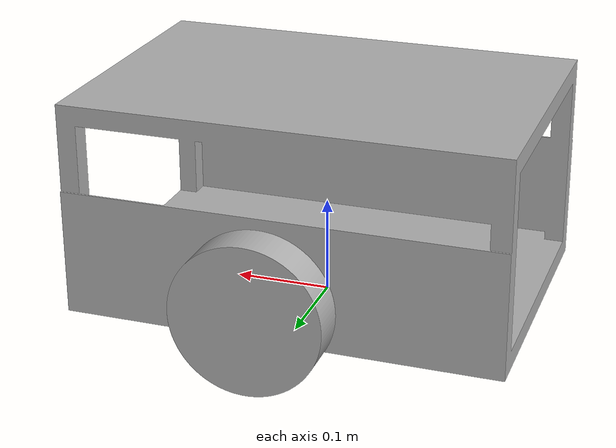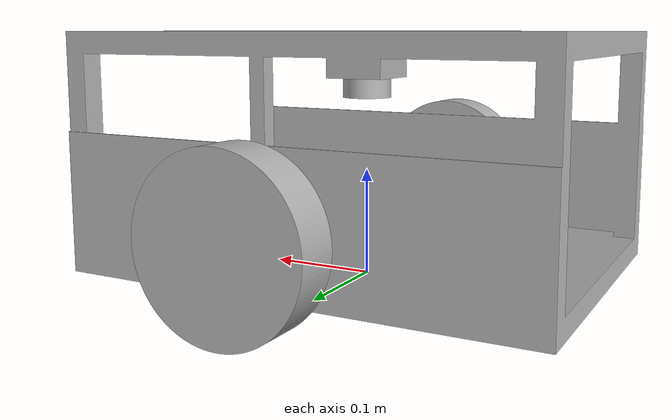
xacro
<?xml version="1.0" ?>
<robot name="urdf_description_oct" xmlns:xacro="http://www.ros.org/wiki/xacro">

<xacro:include filename="$(find urdf_description_oct)/urdf/materials.xacro" />
<xacro:include filename="$(find urdf_description_oct)/urdf/October_2026_URDF.ros2control" />
<xacro:include filename="$(find urdf_description_oct)/urdf/October_2026_URDF.gazebo" />

<link name="base_footprint"/>

<joint name="base_footprint_to_base_link" type="fixed">
  <parent link="base_footprint"/>
  <child link="base_link"/>
  <origin xyz="0 0 0.01" rpy="0 0 0"/>
</joint>
<link name="base_link">
  <inertial>
    <origin xyz="-5.850702875117087e-15 4.8352916323281706e-17 0.10886175850714139" rpy="0 0 0"/>
    <mass value="47.24949112849159"/>
    <inertia ixx="0.85156" iyy="1.296902" izz="1.26345" ixy="-0.0" iyz="0.0" ixz="-0.0"/>
  </inertial>
  <visual>
    <origin xyz="0 0 0" rpy="0 0 0"/>
    <geometry>
      <mesh filename="file://$(find urdf_description_oct)/meshes/base_link.stl" scale="0.001 0.001 0.001"/>
    </geometry>
    <material name="silver"/>
  </visual>
  <collision>
    <origin xyz="0 0 0" rpy="0 0 0"/>
    <geometry>
      <mesh filename="file://$(find urdf_description_oct)/meshes/base_link.stl" scale="0.001 0.001 0.001"/>
    </geometry>
  </collision>
</link>

<link name="left_wheel_1">
  <inertial>
    <origin xyz="-7.105427357601002e-17 0.01999999999999999 1.3877787807814457e-17" rpy="0 0 0"/>
    <mass value="5.54883802440297"/>
    <inertia ixx="0.008543" iyy="0.015606" izz="0.008543" ixy="-0.0" iyz="0.0" ixz="0.0"/>
  </inertial>
  <visual>
    <origin xyz="-0.0 -0.198 -0.065658" rpy="0 0 0"/>
    <geometry>
      <mesh filename="file://$(find urdf_description_oct)/meshes/left_wheel_1.stl" scale="0.001 0.001 0.001"/>
    </geometry>
    <material name="silver"/>
  </visual>
  <collision>
    <origin xyz="-0.0 -0.198 -0.065658" rpy="0 0 0"/>
    <geometry>
      <mesh filename="file://$(find urdf_description_oct)/meshes/left_wheel_1.stl" scale="0.001 0.001 0.001"/>
    </geometry>
  </collision>
</link>

<link name="right_wheel_1">
  <inertial>
    <origin xyz="0.0 -0.01999999999999999 0.0" rpy="0 0 0"/>
    <mass value="5.54883802440297"/>
    <inertia ixx="0.008543" iyy="0.015606" izz="0.008543" ixy="0.0" iyz="-0.0" ixz="-0.0"/>
  </inertial>
  <visual>
    <origin xyz="-0.0 0.198 -0.065658" rpy="0 0 0"/>
    <geometry>
      <mesh filename="file://$(find urdf_description_oct)/meshes/right_wheel_1.stl" scale="0.001 0.001 0.001"/>
    </geometry>
    <material name="silver"/>
  </visual>
  <collision>
    <origin xyz="-0.0 0.198 -0.065658" rpy="0 0 0"/>
    <geometry>
      <mesh filename="file://$(find urdf_description_oct)/meshes/right_wheel_1.stl" scale="0.001 0.001 0.001"/>
    </geometry>
  </collision>
</link>

<link name="lidar_1">
  <inertial>
    <origin xyz="0.0 -4.909461996440466e-18 -0.009099999999999997" rpy="0 0 0"/>
    <mass value="0.22722491709930173"/>
    <inertia ixx="3.5e-05" iyy="3.5e-05" izz="5.8e-05" ixy="-0.0" iyz="0.0" ixz="0.0"/>
  </inertial>
  <visual>
    <origin xyz="0.0 -0.0 -0.1769" rpy="0 0 0"/>
    <geometry>
      <mesh filename="file://$(find urdf_description_oct)/meshes/lidar_1.stl" scale="0.001 0.001 0.001"/>
    </geometry>
    <material name="silver"/>
  </visual>
  <collision>
    <origin xyz="0.0 -0.0 -0.1769" rpy="0 0 0"/>
    <geometry>
      <mesh filename="file://$(find urdf_description_oct)/meshes/lidar_1.stl" scale="0.001 0.001 0.001"/>
    </geometry>
  </collision>
</link>

<joint name="Revolute 1" type="continuous">
  <origin xyz="0.0 0.198 0.065658" rpy="0 0 0"/>
  <parent link="base_link"/>
  <child link="left_wheel_1"/>
  <axis xyz="0.0 1.0 0.0"/>
</joint>

<joint name="Revolute 2" type="continuous">
  <origin xyz="0.0 -0.198 0.065658" rpy="0 0 0"/>
  <parent link="base_link"/>
  <child link="right_wheel_1"/>
  <axis xyz="0.0 1.0 0.0"/>
</joint>

<joint name="Rigid 3" type="fixed">
  <origin xyz="0.0 0.0 0.1769" rpy="0 0 0"/>
  <parent link="base_link"/>
  <child link="lidar_1"/>
</joint>

</robot>

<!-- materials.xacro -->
<robot name="October_2026_URDF" xmlns:xacro="http://www.ros.org/wiki/xacro" >

<material name="silver">
  <color rgba="0.700 0.700 0.700 1.000"/>
</material>

</robot>

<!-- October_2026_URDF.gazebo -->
<robot name="October_2026_URDF" xmlns:xacro="http://www.ros.org/wiki/xacro" >

<xacro:property name="body_color" value="Gazebo/Silver" />

<!-- Base link friction properties (low friction for contact points to slide like casters) -->
<gazebo reference="base_link">
  <material>${body_color}</material>
  <mu1>0.01</mu1>
  <mu2>0.01</mu2>
  <self_collide>true</self_collide>
  <gravity>true</gravity>
</gazebo>

<!-- Wheel traction friction properties -->
<gazebo reference="left_wheel_1">
  <material>${body_color}</material>
  <mu1>1.0</mu1>
  <mu2>1.0</mu2>
  <self_collide>true</self_collide>
</gazebo>

<gazebo reference="right_wheel_1">
  <material>${body_color}</material>
  <mu1>1.0</mu1>
  <mu2>1.0</mu2>
  <self_collide>true</self_collide>
</gazebo>

<!-- Lidar sensor definition -->
<gazebo reference="lidar_1">
  <material>${body_color}</material>
  <mu1>0.2</mu1>
  <mu2>0.2</mu2>
  <self_collide>true</self_collide>
  <sensor name="lidar" type="gpu_lidar">
    <pose>0 0 0 0 0 0</pose>
    <always_on>true</always_on>
    <visualize>true</visualize>
    <update_rate>10</update_rate>
    <topic>/scan</topic>
    <gz_frame_id>lidar_1</gz_frame_id>
    <ray>
      <scan>
        <horizontal>
          <samples>360</samples>
          <resolution>1</resolution>
          <min_angle>-3.14159265</min_angle>
          <max_angle>3.14159265</max_angle>
        </horizontal>
        <vertical>
          <samples>1</samples>
          <resolution>1</resolution>
          <min_angle>0</min_angle>
          <max_angle>0</max_angle>
        </vertical>
      </scan>
      <range>
        <min>0.12</min>
        <max>12.0</max>
        <resolution>0.01</resolution>
      </range>
      <noise>
        <type>gaussian</type>
        <mean>0.0</mean>
        <stddev>0.01</stddev>
      </noise>
    </ray>
  </sensor>
</gazebo>

<!-- Gazebo Sim Plugins -->
<gazebo>
  <!-- Differential Drive System for teleoperation -->
  <plugin filename="gz-sim-diff-drive-system" name="gz::sim::systems::DiffDrive">
    <left_joint>Revolute 1</left_joint>
    <right_joint>Revolute 2</right_joint>
    <wheel_separation>0.436</wheel_separation>
    <wheel_radius>0.075</wheel_radius>

    <!-- Velocity and Acceleration Limits -->
    <max_linear_acceleration>1.0</max_linear_acceleration>
    <max_angular_acceleration>2.0</max_angular_acceleration>
    <min_linear_acceleration>-1.0</min_linear_acceleration>
    <min_angular_acceleration>-2.0</min_angular_acceleration>

    <!-- Topics and TF frames -->
    <topic>/cmd_vel</topic>
    <odom_topic>/odom</odom_topic>
    <tf_topic>/tf</tf_topic>
    <frame_id>odom</frame_id>
    <child_frame_id>base_footprint</child_frame_id>
    <odom_publisher_frequency>30</odom_publisher_frequency>
  </plugin>

  <!-- Joint State Publisher for Wheel Encoders -->
  <plugin filename="gz-sim-joint-state-publisher-system" name="gz::sim::systems::JointStatePublisher">
    <topic>/joint_states</topic>
    <joint_name>Revolute 1</joint_name>
    <joint_name>Revolute 2</joint_name>
  </plugin>
</gazebo>

</robot>
